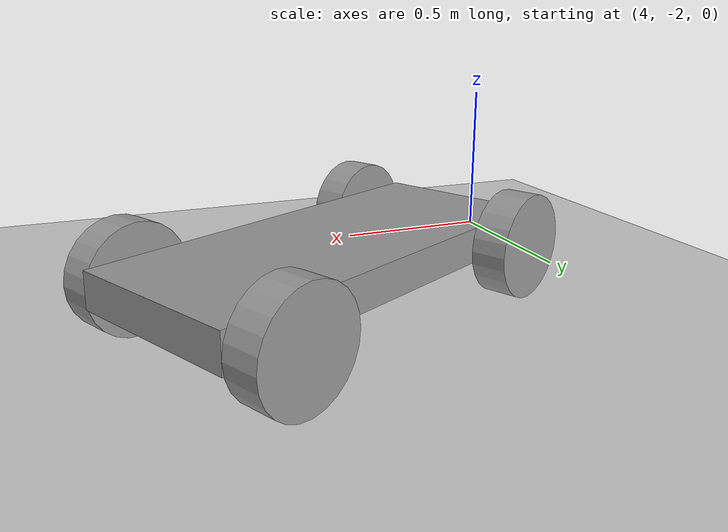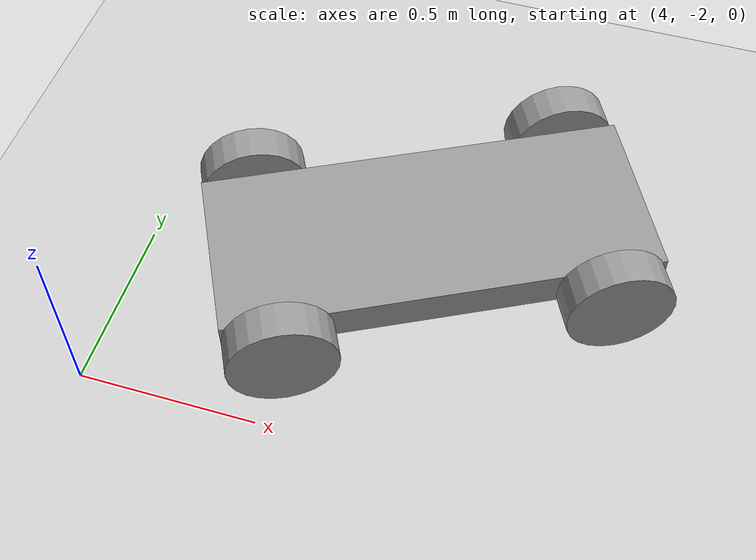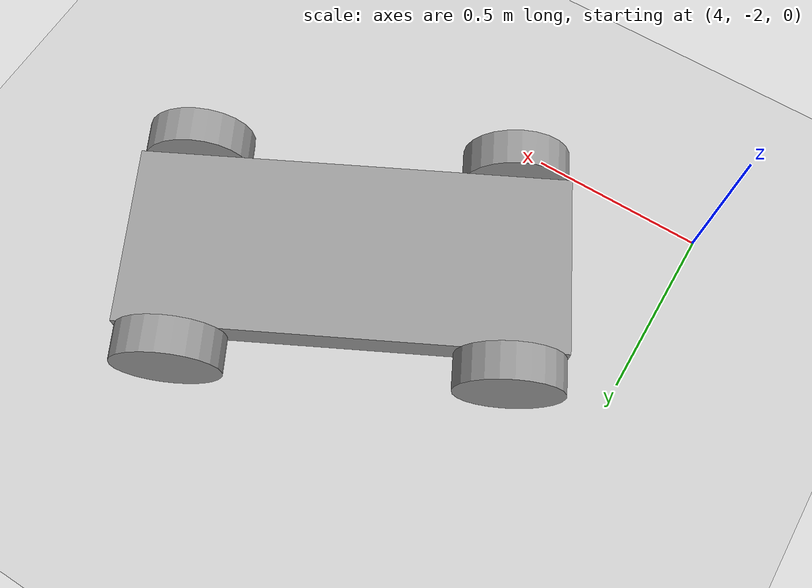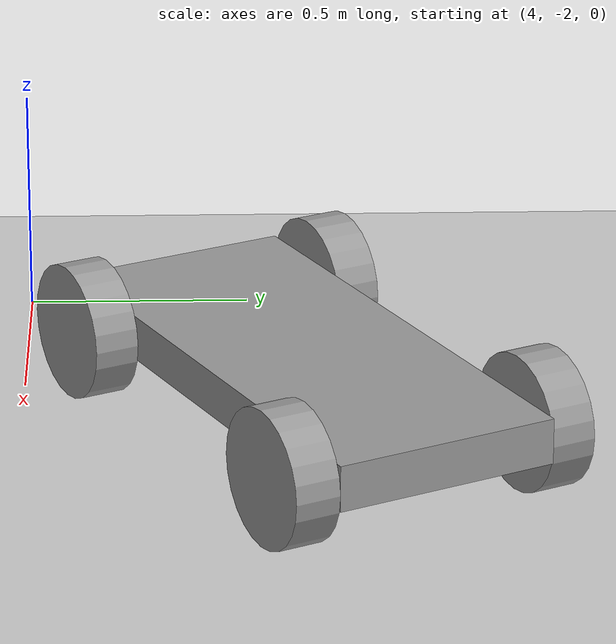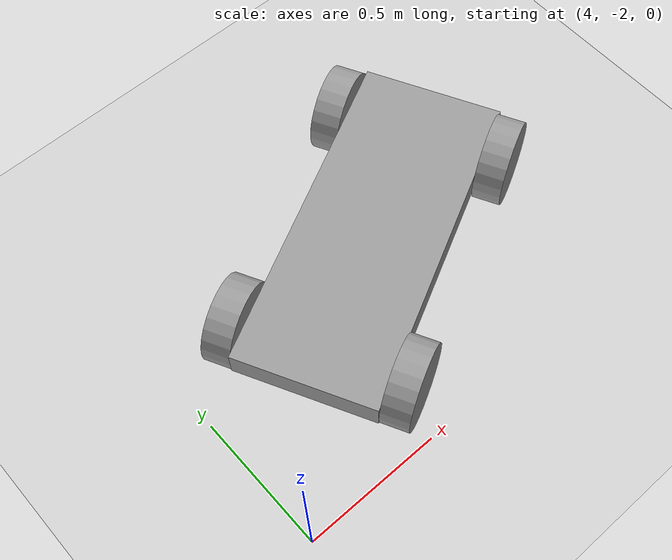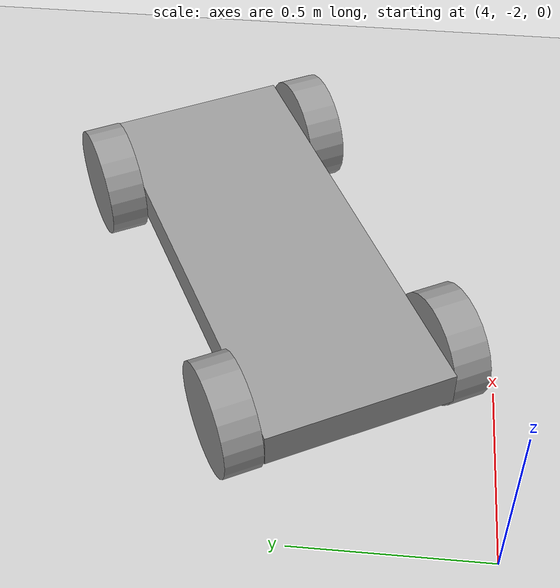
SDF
<sdf version="1.7">
 <world name="default">
  <model name="ground_plane">
   <static>1</static>
   <link name="link">
    <collision name="collision">
     <geometry><plane><normal>0 0 1</normal><size>100 100</size></plane></geometry>
     <surface>
      <contact><collide_bitmask>65535</collide_bitmask></contact>
      <friction><ode><mu>100</mu><mu2>50</mu2></ode></friction>
     </surface>
    </collision>
    <visual name="visual">
     <cast_shadows>0</cast_shadows>
     <geometry><plane><normal>0 0 1</normal><size>100 100</size></plane></geometry>
     <material>
      <script><uri>file://media/materials/scripts/gazebo.material</uri><name>Gazebo/Grey</name></script>
     </material>
    </visual>
   </link>
  </model>
  <model name="little_car">
   <link name="link_1">
    <inertial>
     <mass>1</mass>
     <inertia>
      <ixx>0.166667</ixx>
      <ixy>0</ixy>
      <ixz>0</ixz>
      <iyy>0.166667</iyy>
      <iyz>0</iyz>
      <izz>0.166667</izz>
     </inertia>
    </inertial>
    <pose>-0.316357 -0.367633 0 0 -0 0</pose>
    <visual name="visual">
     <geometry><box><size>1.2 0.5 0.1</size></box></geometry>
     <material>
      <lighting>1</lighting>
      <script><uri>file://media/materials/scripts/gazebo.material</uri><name>Gazebo/Grey</name></script>
      <shader type="pixel"><normal_map>__default__</normal_map></shader>
      <ambient>0.3 0.3 0.3 1</ambient>
      <diffuse>0.7 0.7 0.7 1</diffuse>
      <specular>0.204 0.396 0.643 1</specular>
      <emissive>0.204 0.396 0.643 1</emissive>
     </material>
    </visual>
    <collision name="collision">
     <geometry><box><size>1.2 0.5 0.1</size></box></geometry>
     <surface>
      <friction>
       <ode><mu>1</mu><mu2>1</mu2><fdir1>0 0 0</fdir1><slip1>0</slip1><slip2>0</slip2></ode>
       <torsional>
        <coefficient>1</coefficient>
        <patch_radius>0</patch_radius>
        <surface_radius>0</surface_radius>
        <use_patch_radius>1</use_patch_radius>
        <ode><slip>0</slip></ode>
       </torsional>
      </friction>
      <bounce><restitution_coefficient>0</restitution_coefficient><threshold>1e+06</threshold></bounce>
      <contact>
       <collide_without_contact>0</collide_without_contact>
       <collide_without_contact_bitmask>1</collide_without_contact_bitmask>
       <collide_bitmask>1</collide_bitmask>
       <ode>
        <soft_cfm>0</soft_cfm>
        <soft_erp>0.2</soft_erp>
        <kp>1e+13</kp>
        <kd>1</kd>
        <max_vel>0.01</max_vel>
        <min_depth>0</min_depth>
       </ode>
       <bullet>
        <split_impulse>1</split_impulse>
        <split_impulse_penetration_threshold>-0.01</split_impulse_penetration_threshold>
        <soft_cfm>0</soft_cfm>
        <soft_erp>0.2</soft_erp>
        <kp>1e+13</kp>
        <kd>1</kd>
       </bullet>
      </contact>
     </surface>
    </collision>
   </link>
   <link name="link_2">
    <inertial>
     <mass>1</mass>
     <inertia><ixx>0.145833</ixx><ixy>0</ixy><ixz>0</ixz><iyy>0.145833</iyy><iyz>0</iyz><izz>0.125</izz></inertia>
    </inertial>
    <pose>-0.766357 -0.667648 -0.015 1.5707 -0 0</pose>
    <visual name="visual">
     <geometry><cylinder><radius>0.15</radius><length>0.1</length></cylinder></geometry>
     <material>
      <lighting>1</lighting>
      <script><uri>file://media/materials/scripts/gazebo.material</uri><name>Gazebo/Grey</name></script>
      <shader type="pixel"><normal_map>__default__</normal_map></shader>
      <ambient>0.3 0.3 0.3 1</ambient>
      <diffuse>0.7 0.7 0.7 1</diffuse>
      <specular>0.204 0.396 0.643 1</specular>
      <emissive>0.961 0.475 0 1</emissive>
     </material>
    </visual>
    <collision name="collision">
     <geometry><cylinder><radius>0.15</radius><length>0.1</length></cylinder></geometry>
     <surface>
      <friction>
       <ode><mu>1</mu><mu2>1</mu2><fdir1>0 0 0</fdir1><slip1>0</slip1><slip2>0</slip2></ode>
       <torsional>
        <coefficient>1</coefficient>
        <patch_radius>0</patch_radius>
        <surface_radius>0</surface_radius>
        <use_patch_radius>1</use_patch_radius>
        <ode><slip>0</slip></ode>
       </torsional>
      </friction>
      <bounce><restitution_coefficient>0</restitution_coefficient><threshold>1e+06</threshold></bounce>
      <contact>
       <collide_without_contact>0</collide_without_contact>
       <collide_without_contact_bitmask>1</collide_without_contact_bitmask>
       <collide_bitmask>1</collide_bitmask>
       <ode>
        <soft_cfm>0</soft_cfm>
        <soft_erp>0.2</soft_erp>
        <kp>1e+13</kp>
        <kd>1</kd>
        <max_vel>0.01</max_vel>
        <min_depth>0</min_depth>
       </ode>
       <bullet>
        <split_impulse>1</split_impulse>
        <split_impulse_penetration_threshold>-0.01</split_impulse_penetration_threshold>
        <soft_cfm>0</soft_cfm>
        <soft_erp>0.2</soft_erp>
        <kp>1e+13</kp>
        <kd>1</kd>
       </bullet>
      </contact>
     </surface>
    </collision>
   </link>
   <link name="link_2_clone">
    <inertial>
     <mass>1</mass>
     <inertia><ixx>0.145833</ixx><ixy>0</ixy><ixz>0</ixz><iyy>0.145833</iyy><iyz>0</iyz><izz>0.125</izz></inertia>
    </inertial>
    <pose>0.133643 -0.667648 -0.015 1.5707 -0 0</pose>
    <visual name="visual">
     <geometry><cylinder><radius>0.15</radius><length>0.1</length></cylinder></geometry>
     <material>
      <lighting>1</lighting>
      <script><uri>file://media/materials/scripts/gazebo.material</uri><name>Gazebo/Grey</name></script>
      <shader type="pixel"><normal_map>__default__</normal_map></shader>
      <ambient>0.3 0.3 0.3 1</ambient>
      <diffuse>0.7 0.7 0.7 1</diffuse>
      <specular>0.204 0.396 0.643 1</specular>
      <emissive>0.961 0.475 0 1</emissive>
     </material>
    </visual>
    <collision name="collision">
     <geometry><cylinder><radius>0.15</radius><length>0.1</length></cylinder></geometry>
     <surface>
      <friction>
       <ode><mu>1</mu><mu2>1</mu2><fdir1>0 0 0</fdir1><slip1>0</slip1><slip2>0</slip2></ode>
       <torsional>
        <coefficient>1</coefficient>
        <patch_radius>0</patch_radius>
        <surface_radius>0</surface_radius>
        <use_patch_radius>1</use_patch_radius>
        <ode><slip>0</slip></ode>
       </torsional>
      </friction>
      <bounce><restitution_coefficient>0</restitution_coefficient><threshold>1e+06</threshold></bounce>
      <contact>
       <collide_without_contact>0</collide_without_contact>
       <collide_without_contact_bitmask>1</collide_without_contact_bitmask>
       <collide_bitmask>1</collide_bitmask>
       <ode>
        <soft_cfm>0</soft_cfm>
        <soft_erp>0.2</soft_erp>
        <kp>1e+13</kp>
        <kd>1</kd>
        <max_vel>0.01</max_vel>
        <min_depth>0</min_depth>
       </ode>
       <bullet>
        <split_impulse>1</split_impulse>
        <split_impulse_penetration_threshold>-0.01</split_impulse_penetration_threshold>
        <soft_cfm>0</soft_cfm>
        <soft_erp>0.2</soft_erp>
        <kp>1e+13</kp>
        <kd>1</kd>
       </bullet>
      </contact>
     </surface>
    </collision>
   </link>
   <link name="link_2_clone_0">
    <inertial>
     <mass>1</mass>
     <inertia><ixx>0.145833</ixx><ixy>0</ixy><ixz>0</ixz><iyy>0.145833</iyy><iyz>0</iyz><izz>0.125</izz></inertia>
    </inertial>
    <pose>-0.766357 -0.067619 -0.015 1.5707 -0 0</pose>
    <visual name="visual">
     <geometry><cylinder><radius>0.15</radius><length>0.1</length></cylinder></geometry>
     <material>
      <lighting>1</lighting>
      <script><uri>file://media/materials/scripts/gazebo.material</uri><name>Gazebo/Grey</name></script>
      <shader type="pixel"><normal_map>__default__</normal_map></shader>
      <ambient>0.3 0.3 0.3 1</ambient>
      <diffuse>0.7 0.7 0.7 1</diffuse>
      <specular>0.204 0.396 0.643 1</specular>
      <emissive>0.961 0.475 0 1</emissive>
     </material>
    </visual>
    <collision name="collision">
     <geometry><cylinder><radius>0.15</radius><length>0.1</length></cylinder></geometry>
     <surface>
      <friction>
       <ode><mu>1</mu><mu2>1</mu2><fdir1>0 0 0</fdir1><slip1>0</slip1><slip2>0</slip2></ode>
       <torsional>
        <coefficient>1</coefficient>
        <patch_radius>0</patch_radius>
        <surface_radius>0</surface_radius>
        <use_patch_radius>1</use_patch_radius>
        <ode><slip>0</slip></ode>
       </torsional>
      </friction>
      <bounce><restitution_coefficient>0</restitution_coefficient><threshold>1e+06</threshold></bounce>
      <contact>
       <collide_without_contact>0</collide_without_contact>
       <collide_without_contact_bitmask>1</collide_without_contact_bitmask>
       <collide_bitmask>1</collide_bitmask>
       <ode>
        <soft_cfm>0</soft_cfm>
        <soft_erp>0.2</soft_erp>
        <kp>1e+13</kp>
        <kd>1</kd>
        <max_vel>0.01</max_vel>
        <min_depth>0</min_depth>
       </ode>
       <bullet>
        <split_impulse>1</split_impulse>
        <split_impulse_penetration_threshold>-0.01</split_impulse_penetration_threshold>
        <soft_cfm>0</soft_cfm>
        <soft_erp>0.2</soft_erp>
        <kp>1e+13</kp>
        <kd>1</kd>
       </bullet>
      </contact>
     </surface>
    </collision>
   </link>
   <link name="link_2_clone_1">
    <inertial>
     <mass>1</mass>
     <inertia><ixx>0.145833</ixx><ixy>0</ixy><ixz>0</ixz><iyy>0.145833</iyy><iyz>0</iyz><izz>0.125</izz></inertia>
    </inertial>
    <pose>0.133643 -0.067619 -0.015 1.5707 -0 0</pose>
    <visual name="visual">
     <geometry><cylinder><radius>0.15</radius><length>0.1</length></cylinder></geometry>
     <material>
      <lighting>1</lighting>
      <script><uri>file://media/materials/scripts/gazebo.material</uri><name>Gazebo/Grey</name></script>
      <shader type="pixel"><normal_map>__default__</normal_map></shader>
      <ambient>0.3 0.3 0.3 1</ambient>
      <diffuse>0.7 0.7 0.7 1</diffuse>
      <specular>0.204 0.396 0.643 1</specular>
      <emissive>0.961 0.475 0 1</emissive>
     </material>
    </visual>
    <collision name="collision">
     <geometry><cylinder><radius>0.15</radius><length>0.1</length></cylinder></geometry>
     <surface>
      <friction>
       <ode><mu>1</mu><mu2>1</mu2><fdir1>0 0 0</fdir1><slip1>0</slip1><slip2>0</slip2></ode>
       <torsional>
        <coefficient>1</coefficient>
        <patch_radius>0</patch_radius>
        <surface_radius>0</surface_radius>
        <use_patch_radius>1</use_patch_radius>
        <ode><slip>0</slip></ode>
       </torsional>
      </friction>
      <bounce><restitution_coefficient>0</restitution_coefficient><threshold>1e+06</threshold></bounce>
      <contact>
       <collide_without_contact>0</collide_without_contact>
       <collide_without_contact_bitmask>1</collide_without_contact_bitmask>
       <collide_bitmask>1</collide_bitmask>
       <ode>
        <soft_cfm>0</soft_cfm>
        <soft_erp>0.2</soft_erp>
        <kp>1e+13</kp>
        <kd>1</kd>
        <max_vel>0.01</max_vel>
        <min_depth>0</min_depth>
       </ode>
       <bullet>
        <split_impulse>1</split_impulse>
        <split_impulse_penetration_threshold>-0.01</split_impulse_penetration_threshold>
        <soft_cfm>0</soft_cfm>
        <soft_erp>0.2</soft_erp>
        <kp>1e+13</kp>
        <kd>1</kd>
       </bullet>
      </contact>
     </surface>
    </collision>
   </link>
   <joint name="link_1_JOINT_1" type="revolute">
    <parent>link_1</parent>
    <child>link_2</child>
    <axis>
     <xyz>0 0 1</xyz>
     <limit>
      <lower>-1.79769e+308</lower>
      <upper>1.79769e+308</upper>
      <effort>-1</effort>
      <velocity>-1</velocity>
     </limit>
     <dynamics>
      <spring_reference>0</spring_reference>
      <spring_stiffness>0</spring_stiffness>
      <damping>0</damping>
      <friction>0</friction>
     </dynamics>
    </axis>
    <physics>
     <ode><limit><cfm>0</cfm><erp>0.2</erp></limit><suspension><cfm>0</cfm><erp>0.2</erp></suspension></ode>
    </physics>
   </joint>
   <joint name="link_1_JOINT_2" type="revolute">
    <parent>link_1</parent>
    <child>link_2_clone_0</child>
    <axis>
     <xyz>0 0 1</xyz>
     <limit>
      <lower>-1.79769e+308</lower>
      <upper>1.79769e+308</upper>
      <effort>-1</effort>
      <velocity>-1</velocity>
     </limit>
     <dynamics>
      <spring_reference>0</spring_reference>
      <spring_stiffness>0</spring_stiffness>
      <damping>0</damping>
      <friction>0</friction>
     </dynamics>
    </axis>
    <physics>
     <ode><limit><cfm>0</cfm><erp>0.2</erp></limit><suspension><cfm>0</cfm><erp>0.2</erp></suspension></ode>
    </physics>
   </joint>
   <joint name="link_1_JOINT_3" type="revolute">
    <parent>link_1</parent>
    <child>link_2_clone</child>
    <axis>
     <xyz>0 0 1</xyz>
     <limit>
      <lower>-1.79769e+308</lower>
      <upper>1.79769e+308</upper>
      <effort>-1</effort>
      <velocity>-1</velocity>
     </limit>
     <dynamics>
      <spring_reference>0</spring_reference>
      <spring_stiffness>0</spring_stiffness>
      <damping>0</damping>
      <friction>0</friction>
     </dynamics>
    </axis>
    <physics>
     <ode><limit><cfm>0</cfm><erp>0.2</erp></limit><suspension><cfm>0</cfm><erp>0.2</erp></suspension></ode>
    </physics>
   </joint>
   <joint name="link_1_JOINT_4" type="revolute">
    <parent>link_1</parent>
    <child>link_2_clone_1</child>
    <axis>
     <xyz>1 0 0</xyz>
     <limit>
      <lower>-1.79769e+308</lower>
      <upper>1.79769e+308</upper>
      <effort>-1</effort>
      <velocity>-1</velocity>
     </limit>
     <dynamics>
      <spring_reference>0</spring_reference>
      <spring_stiffness>0</spring_stiffness>
      <damping>0</damping>
      <friction>0</friction>
     </dynamics>
    </axis>
    <physics>
     <ode><limit><cfm>0</cfm><erp>0.2</erp></limit><suspension><cfm>0</cfm><erp>0.2</erp></suspension></ode>
    </physics>
   </joint>
   <static>0</static>
   <pose>4.91111 -0.915481 0.164993 -5e-06 1.5e-05 0.473483</pose>
  </model>
 </world>
</sdf>
